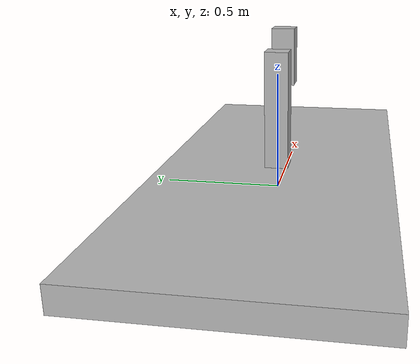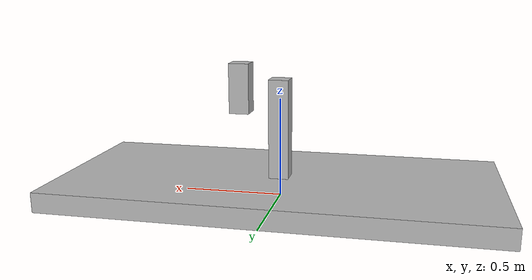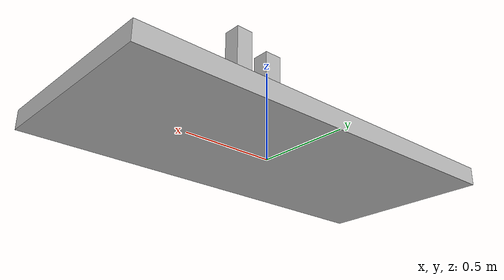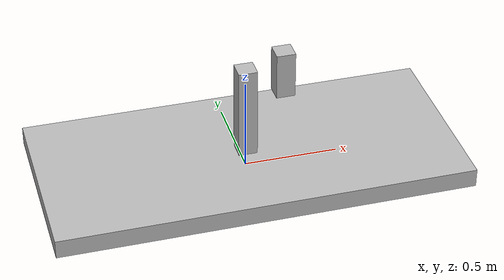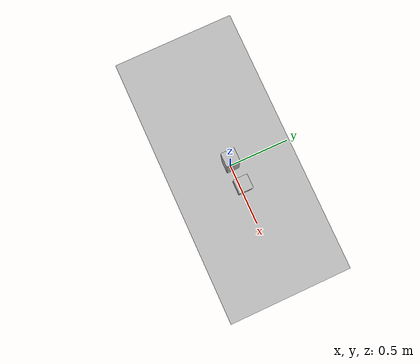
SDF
<?xml version="1.0" ?>
<!-- |    This document was autogenerated by xacro from /home/user/projects/wasp/gz/models/prismatic_demo/model.sdf.xacro | -->
<!-- |    EDITING THIS FILE BY HAND IS NOT RECOMMENDED                                 | -->
<sdf version="1.5">
  <model name="prismatic_joint">
    <link name="heavy_base">
      <!-- position the base such that the bottom touches the floor -->
      <pose>0 0 0.05 0 0 0</pose>
      <inertial>
        <mass>100</mass>
        <!-- kg -->
        <inertia>
          <!-- (mass / 12) * (y*y + z*z) -->
          <ixx>8.4167</ixx>
          <ixy>0</ixy>
          <ixz>0</ixz>
          <!-- (mass / 12) * (x*x + z*z) -->
          <iyy>40.417</iyy>
          <iyz>0</iyz>
          <!-- (mass / 12) * (y*y + x*x) -->
          <izz>48.667</izz>
        </inertia>
      </inertial>
      <!-- Same geometry as visual -->
      <collision name="heavy_base_collision">
        <geometry>
          <box>
            <size>2.2 1 0.1</size>
          </box>
        </geometry>
      </collision>
      <!-- Same geometry as collision -->
      <visual name="heavy_base_visual">
        <geometry>
          <box>
            <size>2.2 1 0.1</size>
          </box>
        </geometry>
        <material>
          <script>
            <uri>model://demo_joint_types/materials/scripts</uri>
            <uri>model://demo_joint_types/materials/textures</uri>
            <name>demo_joint_types/legend</name>
          </script>
        </material>
      </visual>
    </link>
    <link name="prismatic_base">
      <!-- Put the bottom of base on top of the heavy base -->
      <pose>0 0 0.35 0 0 0</pose>
      <inertial>
        <inertia>
          <!-- (mass / 12) * (y*y + z*z) -->
          <ixx>0.021667</ixx>
          <ixy>0</ixy>
          <ixz>0</ixz>
          <!-- (mass / 12) * (x*x + z*z) -->
          <iyy>0.021667</iyy>
          <iyz>0</iyz>
          <!-- (mass / 12) * (y*y + x*x) -->
          <izz>0.0016667</izz>
        </inertia>
      </inertial>
      <!-- Same geometry as visual -->
      <collision name="prismatic_base_collision">
        <geometry>
          <box>
            <size>0.1 0.1 0.5</size>
          </box>
        </geometry>
      </collision>
      <!-- Same geometry as collision -->
      <visual name="prismatic_base_visual">
        <geometry>
          <box>
            <size>0.1 0.1 0.5</size>
          </box>
        </geometry>
        <material>
          <script>
            <uri>model://demo_joint_types/materials/scripts</uri>
            <uri>model://demo_joint_types/materials/textures</uri>
            <name>demo_joint_types/parent</name>
          </script>
        </material>
      </visual>
    </link>
    <joint name="prismatic_base_to_heavy_base" type="fixed">
      <parent>heavy_base</parent>
      <child>prismatic_base</child>
    </joint>
    <link name="prismatic_slide">
      <!-- Put the slide near the top of the base -->
      <pose>0.2 0 0.55 0 0 0</pose>
      <inertial>
        <inertia>
          <!-- (mass / 12) * (y*y + z*z) -->
          <ixx>0.0060417</ixx>
          <ixy>0</ixy>
          <ixz>0</ixz>
          <!-- (mass / 12) * (x*x + z*z) -->
          <iyy>0.0060417</iyy>
          <iyz>0</iyz>
          <!-- (mass / 12) * (y*y + x*x) -->
          <izz>0.0016667</izz>
        </inertia>
      </inertial>
      <!-- Same geometry as visual -->
      <collision name="prismatic_slide_collision">
        <geometry>
          <box>
            <size>0.1 0.1 0.25</size>
          </box>
        </geometry>
      </collision>
      <!-- Same geometry as collision -->
      <visual name="prismatic_slide_visual">
        <geometry>
          <box>
            <size>0.1 0.1 0.25</size>
          </box>
        </geometry>
        <material>
          <script>
            <uri>model://demo_joint_types/materials/scripts</uri>
            <uri>model://demo_joint_types/materials/textures</uri>
            <name>demo_joint_types/child</name>
          </script>
        </material>
      </visual>
    </link>
    <joint name="prismatic_demo" type="prismatic">
      <parent>prismatic_base</parent>
      <child>prismatic_slide</child>
      <axis>
        <xyz>0 1 0</xyz>
        <!-- Make it springy to keep the demo moving -->
        <limit>
          <lower>-0.25</lower>
          <upper>0.25</upper>
        </limit>
        <dynamics>
          <spring_stiffness>100</spring_stiffness>
        </dynamics>
      </axis>
    </joint>
  </model>
</sdf>
